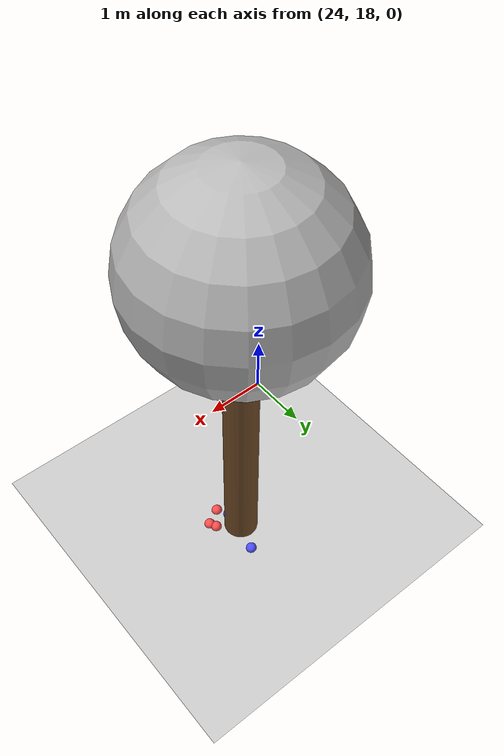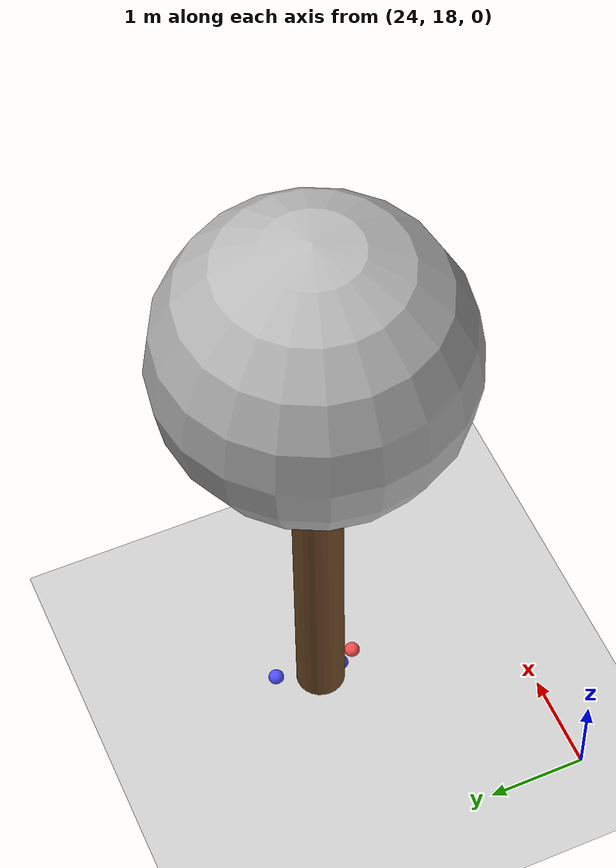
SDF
<sdf version="1.7">
 <world name="default">
  <model name="ground_plane">
   <static>1</static>
   <link name="link">
    <collision name="collision">
     <geometry><plane><normal>0 0 1</normal><size>100 100</size></plane></geometry>
     <surface>
      <contact><collide_bitmask>65535</collide_bitmask></contact>
      <friction><ode><mu>100</mu><mu2>50</mu2></ode></friction>
     </surface>
    </collision>
    <visual name="visual">
     <cast_shadows>0</cast_shadows>
     <geometry><plane><normal>0 0 1</normal><size>100 100</size></plane></geometry>
     <material>
      <script><uri>file://media/materials/scripts/gazebo.material</uri><name>Gazebo/Grey</name></script>
     </material>
    </visual>
   </link>
  </model>
  <model name="tree_simple_48">
   <static>1</static>
   <link name="link">
    <pose>0 0 0.1 0 -0 0</pose>
    <inertial>
     <mass>666</mass>
     <inertia>
      <ixx>0.0861167</ixx>
      <ixy>0</ixy>
      <ixz>0</ixz>
      <iyy>0.0861167</iyy>
      <iyz>0</iyz>
      <izz>0.0861167</izz>
     </inertia>
    </inertial>
    <collision name="collision_trunk">
     <pose>0 0 2 0 -0 0</pose>
     <geometry><cylinder><radius>0.25</radius><length>4</length></cylinder></geometry>
     <surface>
      <contact>
       <poissons_ratio>0.347</poissons_ratio>
       <elastic_modulus>8.8e+09</elastic_modulus>
       <ode><kp>100000</kp><kd>100</kd><max_vel>100</max_vel><min_depth>0.001</min_depth></ode>
      </contact>
      <friction>
       <torsional>
        <coefficient>1</coefficient>
        <use_patch_radius>0</use_patch_radius>
        <surface_radius>0.01</surface_radius>
       </torsional>
      </friction>
     </surface>
    </collision>
    <collision name="collision_treetop">
     <pose>0 0 5.2 0 -0 0</pose>
     <geometry><sphere><radius>1.5</radius></sphere></geometry>
     <surface>
      <contact>
       <poissons_ratio>0.347</poissons_ratio>
       <elastic_modulus>8.8e+09</elastic_modulus>
       <ode><kp>100000</kp><kd>100</kd><max_vel>100</max_vel><min_depth>0.001</min_depth></ode>
      </contact>
      <friction>
       <torsional>
        <coefficient>1</coefficient>
        <use_patch_radius>0</use_patch_radius>
        <surface_radius>0.01</surface_radius>
       </torsional>
      </friction>
     </surface>
    </collision>
    <visual name="trunk">
     <pose>0 0 2 0 -0 0</pose>
     <geometry><cylinder><radius>0.25</radius><length>4</length></cylinder></geometry>
     <material>
      <script>
       <uri>model://tree_simple/scripts</uri>
       <uri>model://tree_simple/materials/textures</uri>
       <name>TreeSimple/Trunk</name>
      </script>
     </material>
    </visual>
    <visual name="treetop">
     <pose>0 0 5.2 0 -0 0</pose>
     <geometry><sphere><radius>1.5</radius></sphere></geometry>
     <material>
      <script>
       <uri>model://tree_simple/scripts</uri>
       <uri>model://tree_simple/materials/textures</uri>
       <name>TreeSimple/Treetop</name>
      </script>
     </material>
    </visual>
   </link>
   <pose>26 20 -0.1 0 -0 0</pose>
  </model>
  <model name="seed_blue_81">
   <link name="link">
    <inertial>
     <mass>1</mass>
     <inertia><ixx>0.1</ixx><ixy>0</ixy><ixz>0</ixz><iyy>0.1</iyy><iyz>0</iyz><izz>0.1</izz></inertia>
    </inertial>
    <visual name="visual">
     <geometry><sphere><radius>0.08</radius></sphere></geometry>
     <material>
      <script><name>Gazebo/Grey</name><uri>file://media/materials/scripts/gazebo.material</uri></script>
      <shader type="pixel"><normal_map>__default__</normal_map></shader>
      <ambient>0.3 0.3 1 1</ambient>
      <diffuse>0.7 0.7 0.7 1</diffuse>
      <specular>0.01 0.01 0.01 1</specular>
      <emissive>0 0 0 1</emissive>
     </material>
    </visual>
    <collision name="collision">
     <geometry><sphere><radius>0.0005</radius></sphere></geometry>
     <surface>
      <friction>
       <ode><mu>1</mu><mu2>1</mu2><fdir1>0 0 0</fdir1><slip1>0</slip1><slip2>0</slip2></ode>
       <torsional>
        <coefficient>1</coefficient>
        <patch_radius>0</patch_radius>
        <surface_radius>0</surface_radius>
        <use_patch_radius>1</use_patch_radius>
        <ode><slip>0</slip></ode>
       </torsional>
      </friction>
      <bounce><restitution_coefficient>0</restitution_coefficient><threshold>1e+06</threshold></bounce>
      <contact>
       <collide_without_contact>0</collide_without_contact>
       <collide_without_contact_bitmask>1</collide_without_contact_bitmask>
       <collide_bitmask>1</collide_bitmask>
       <ode>
        <soft_cfm>0</soft_cfm>
        <soft_erp>0.2</soft_erp>
        <kp>1e+13</kp>
        <kd>1</kd>
        <max_vel>0.01</max_vel>
        <min_depth>0</min_depth>
       </ode>
       <bullet>
        <split_impulse>1</split_impulse>
        <split_impulse_penetration_threshold>-0.01</split_impulse_penetration_threshold>
        <soft_cfm>0</soft_cfm>
        <soft_erp>0.2</soft_erp>
        <kp>1e+13</kp>
        <kd>1</kd>
       </bullet>
      </contact>
     </surface>
    </collision>
   </link>
   <static>0</static>
   <pose>26.048 19.7534 0.0005 0.005519 0.001075 3e-06</pose>
  </model>
  <model name="seed_blue_87">
   <link name="link">
    <inertial>
     <mass>1</mass>
     <inertia><ixx>0.1</ixx><ixy>0</ixy><ixz>0</ixz><iyy>0.1</iyy><iyz>0</iyz><izz>0.1</izz></inertia>
    </inertial>
    <visual name="visual">
     <geometry><sphere><radius>0.08</radius></sphere></geometry>
     <material>
      <script><name>Gazebo/Grey</name><uri>file://media/materials/scripts/gazebo.material</uri></script>
      <shader type="pixel"><normal_map>__default__</normal_map></shader>
      <ambient>0.3 0.3 1 1</ambient>
      <diffuse>0.7 0.7 0.7 1</diffuse>
      <specular>0.01 0.01 0.01 1</specular>
      <emissive>0 0 0 1</emissive>
     </material>
    </visual>
    <collision name="collision">
     <geometry><sphere><radius>0.0005</radius></sphere></geometry>
     <surface>
      <friction>
       <ode><mu>1</mu><mu2>1</mu2><fdir1>0 0 0</fdir1><slip1>0</slip1><slip2>0</slip2></ode>
       <torsional>
        <coefficient>1</coefficient>
        <patch_radius>0</patch_radius>
        <surface_radius>0</surface_radius>
        <use_patch_radius>1</use_patch_radius>
        <ode><slip>0</slip></ode>
       </torsional>
      </friction>
      <bounce><restitution_coefficient>0</restitution_coefficient><threshold>1e+06</threshold></bounce>
      <contact>
       <collide_without_contact>0</collide_without_contact>
       <collide_without_contact_bitmask>1</collide_without_contact_bitmask>
       <collide_bitmask>1</collide_bitmask>
       <ode>
        <soft_cfm>0</soft_cfm>
        <soft_erp>0.2</soft_erp>
        <kp>1e+13</kp>
        <kd>1</kd>
        <max_vel>0.01</max_vel>
        <min_depth>0</min_depth>
       </ode>
       <bullet>
        <split_impulse>1</split_impulse>
        <split_impulse_penetration_threshold>-0.01</split_impulse_penetration_threshold>
        <soft_cfm>0</soft_cfm>
        <soft_erp>0.2</soft_erp>
        <kp>1e+13</kp>
        <kd>1</kd>
       </bullet>
      </contact>
     </surface>
    </collision>
   </link>
   <static>0</static>
   <pose>26.1532 20.4333 0.0005 0 -0 0</pose>
  </model>
  <model name="seed_red_227">
   <link name="link">
    <inertial>
     <mass>1</mass>
     <inertia><ixx>0.1</ixx><ixy>0</ixy><ixz>0</ixz><iyy>0.1</iyy><iyz>0</iyz><izz>0.1</izz></inertia>
    </inertial>
    <visual name="visual">
     <geometry><sphere><radius>0.08</radius></sphere></geometry>
     <material>
      <script><name>Gazebo/Grey</name><uri>file://media/materials/scripts/gazebo.material</uri></script>
      <shader type="pixel"><normal_map>__default__</normal_map></shader>
      <ambient>1 0.3 0.3 1</ambient>
      <diffuse>0.7 0.7 0.7 1</diffuse>
      <specular>0.01 0.01 0.01 1</specular>
      <emissive>0 0 0 1</emissive>
     </material>
    </visual>
    <collision name="collision">
     <geometry><sphere><radius>0.0005</radius></sphere></geometry>
     <surface>
      <friction>
       <ode><mu>1</mu><mu2>1</mu2><fdir1>0 0 0</fdir1><slip1>0</slip1><slip2>0</slip2></ode>
       <torsional>
        <coefficient>1</coefficient>
        <patch_radius>0</patch_radius>
        <surface_radius>0</surface_radius>
        <use_patch_radius>1</use_patch_radius>
        <ode><slip>0</slip></ode>
       </torsional>
      </friction>
      <bounce><restitution_coefficient>0</restitution_coefficient><threshold>1e+06</threshold></bounce>
      <contact>
       <collide_without_contact>0</collide_without_contact>
       <collide_without_contact_bitmask>1</collide_without_contact_bitmask>
       <collide_bitmask>1</collide_bitmask>
       <ode>
        <soft_cfm>0</soft_cfm>
        <soft_erp>0.2</soft_erp>
        <kp>1e+13</kp>
        <kd>1</kd>
        <max_vel>0.01</max_vel>
        <min_depth>0</min_depth>
       </ode>
       <bullet>
        <split_impulse>1</split_impulse>
        <split_impulse_penetration_threshold>-0.01</split_impulse_penetration_threshold>
        <soft_cfm>0</soft_cfm>
        <soft_erp>0.2</soft_erp>
        <kp>1e+13</kp>
        <kd>1</kd>
       </bullet>
      </contact>
     </surface>
    </collision>
   </link>
   <static>0</static>
   <pose>26.1413 19.5832 0.0005 0 -0 0</pose>
  </model>
  <model name="seed_red_229">
   <link name="link">
    <inertial>
     <mass>1</mass>
     <inertia><ixx>0.1</ixx><ixy>0</ixy><ixz>0</ixz><iyy>0.1</iyy><iyz>0</iyz><izz>0.1</izz></inertia>
    </inertial>
    <visual name="visual">
     <geometry><sphere><radius>0.08</radius></sphere></geometry>
     <material>
      <script><name>Gazebo/Grey</name><uri>file://media/materials/scripts/gazebo.material</uri></script>
      <shader type="pixel"><normal_map>__default__</normal_map></shader>
      <ambient>1 0.3 0.3 1</ambient>
      <diffuse>0.7 0.7 0.7 1</diffuse>
      <specular>0.01 0.01 0.01 1</specular>
      <emissive>0 0 0 1</emissive>
     </material>
    </visual>
    <collision name="collision">
     <geometry><sphere><radius>0.0005</radius></sphere></geometry>
     <surface>
      <friction>
       <ode><mu>1</mu><mu2>1</mu2><fdir1>0 0 0</fdir1><slip1>0</slip1><slip2>0</slip2></ode>
       <torsional>
        <coefficient>1</coefficient>
        <patch_radius>0</patch_radius>
        <surface_radius>0</surface_radius>
        <use_patch_radius>1</use_patch_radius>
        <ode><slip>0</slip></ode>
       </torsional>
      </friction>
      <bounce><restitution_coefficient>0</restitution_coefficient><threshold>1e+06</threshold></bounce>
      <contact>
       <collide_without_contact>0</collide_without_contact>
       <collide_without_contact_bitmask>1</collide_without_contact_bitmask>
       <collide_bitmask>1</collide_bitmask>
       <ode>
        <soft_cfm>0</soft_cfm>
        <soft_erp>0.2</soft_erp>
        <kp>1e+13</kp>
        <kd>1</kd>
        <max_vel>0.01</max_vel>
        <min_depth>0</min_depth>
       </ode>
       <bullet>
        <split_impulse>1</split_impulse>
        <split_impulse_penetration_threshold>-0.01</split_impulse_penetration_threshold>
        <soft_cfm>0</soft_cfm>
        <soft_erp>0.2</soft_erp>
        <kp>1e+13</kp>
        <kd>1</kd>
       </bullet>
      </contact>
     </surface>
    </collision>
   </link>
   <static>0</static>
   <pose>26.3776 19.7104 0.0005 0 -0 0</pose>
  </model>
  <model name="seed_red_230">
   <link name="link">
    <inertial>
     <mass>1</mass>
     <inertia><ixx>0.1</ixx><ixy>0</ixy><ixz>0</ixz><iyy>0.1</iyy><iyz>0</iyz><izz>0.1</izz></inertia>
    </inertial>
    <visual name="visual">
     <geometry><sphere><radius>0.08</radius></sphere></geometry>
     <material>
      <script><name>Gazebo/Grey</name><uri>file://media/materials/scripts/gazebo.material</uri></script>
      <shader type="pixel"><normal_map>__default__</normal_map></shader>
      <ambient>1 0.3 0.3 1</ambient>
      <diffuse>0.7 0.7 0.7 1</diffuse>
      <specular>0.01 0.01 0.01 1</specular>
      <emissive>0 0 0 1</emissive>
     </material>
    </visual>
    <collision name="collision">
     <geometry><sphere><radius>0.0005</radius></sphere></geometry>
     <surface>
      <friction>
       <ode><mu>1</mu><mu2>1</mu2><fdir1>0 0 0</fdir1><slip1>0</slip1><slip2>0</slip2></ode>
       <torsional>
        <coefficient>1</coefficient>
        <patch_radius>0</patch_radius>
        <surface_radius>0</surface_radius>
        <use_patch_radius>1</use_patch_radius>
        <ode><slip>0</slip></ode>
       </torsional>
      </friction>
      <bounce><restitution_coefficient>0</restitution_coefficient><threshold>1e+06</threshold></bounce>
      <contact>
       <collide_without_contact>0</collide_without_contact>
       <collide_without_contact_bitmask>1</collide_without_contact_bitmask>
       <collide_bitmask>1</collide_bitmask>
       <ode>
        <soft_cfm>0</soft_cfm>
        <soft_erp>0.2</soft_erp>
        <kp>1e+13</kp>
        <kd>1</kd>
        <max_vel>0.01</max_vel>
        <min_depth>0</min_depth>
       </ode>
       <bullet>
        <split_impulse>1</split_impulse>
        <split_impulse_penetration_threshold>-0.01</split_impulse_penetration_threshold>
        <soft_cfm>0</soft_cfm>
        <soft_erp>0.2</soft_erp>
        <kp>1e+13</kp>
        <kd>1</kd>
       </bullet>
      </contact>
     </surface>
    </collision>
   </link>
   <static>0</static>
   <pose>26.328 19.8111 0.0005 0 -0 0</pose>
  </model>
 </world>
</sdf>
